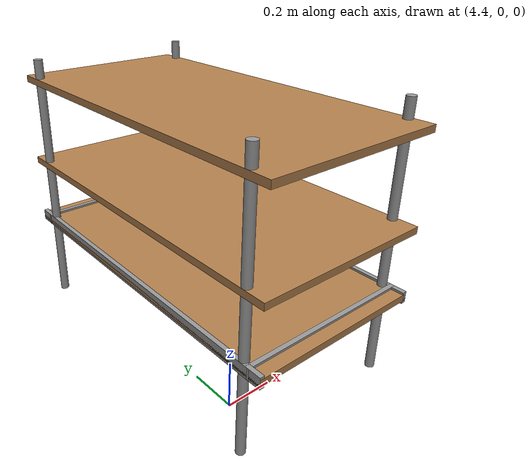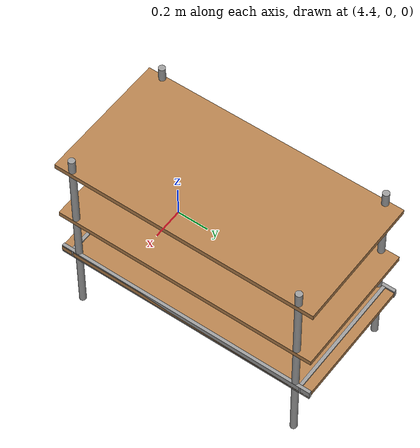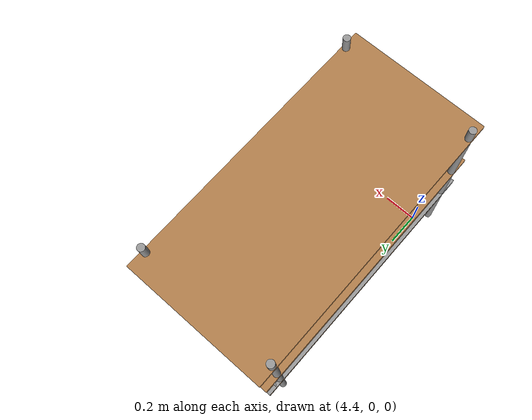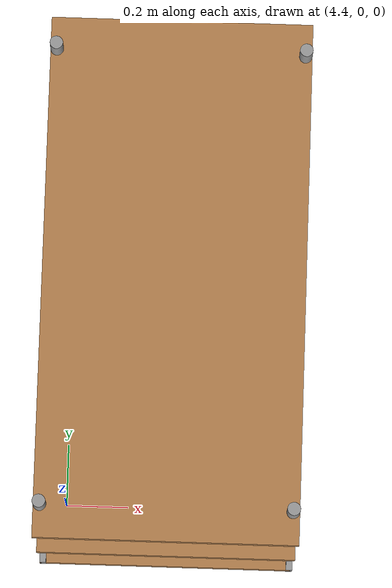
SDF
<sdf version="1.6">
 <world name="default">
  <gravity>0 0 -9.8</gravity>
  <physics default="0" name="default_physics" type="ode">
   <max_step_size>0.001</max_step_size>
   <real_time_factor>1</real_time_factor>
   <real_time_update_rate>1000</real_time_update_rate>
  </physics>
  <model name="pallet_0">
   <include><uri>model://warehouse_pallet</uri></include>
   <pose>4.73156 0.57943 0 0 0 0</pose>
  </model>
  <light name="Warehouse_CeilingLight_003" type="point">
   <pose>0 0 9 0 0 0</pose>
   <diffuse>0.5 0.5 0.5 1</diffuse>
   <specular>0.2 0.2 0.2 1</specular>
   <attenuation>
    <range>80</range>
    <constant>0.01</constant>
    <linear>0.01</linear>
    <quadratic>0.001</quadratic>
   </attenuation>
   <direction>0.1 0.1 -1</direction>
  </light>
 </world>
</sdf>

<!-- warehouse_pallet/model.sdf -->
<sdf version='1.7'>
  <model name='warehouse_pallet'>
    <link name='warehouse_pallet::link'>
      <pose>0 0 -0 0 -0 1.57</pose>
      <self_collide>0</self_collide>
      <inertial>
        <pose>0 0 0 0 -0 0</pose>
        <inertia>
          <ixx>0.267042</ixx>
          <ixy>0</ixy>
          <ixz>0</ixz>
          <iyy>0.937875</iyy>
          <iyz>0</iyz>
          <izz>1.20417</izz>
        </inertia>
        <mass>1</mass>
      </inertial>
      <enable_wind>0</enable_wind>
      <kinematic>0</kinematic>
      <gravity>1</gravity>
      <visual name='holding1_visual'>
        <pose>0 0.39 0.3 0 -0 0</pose>
        <geometry>
          <box>
            <size>1.6 0.02 0.05</size>
          </box>
        </geometry>
        <material>
          <script>
            <uri>file://media/materials/scripts/gazebo.material</uri>
            <name>Gazebo/Grey</name>
          </script>
          <shader type='pixel'>
            <normal_map>__default__</normal_map>
          </shader>
          <ambient>0.3 0.3 0.3 1</ambient>
          <diffuse>0.7 0.7 0.7 1</diffuse>
          <specular>0.01 0.01 0.01 1</specular>
          <emissive>0 0 0 1</emissive>
        </material>
        <transparency>0</transparency>
        <cast_shadows>1</cast_shadows>
      </visual>
      <visual name='front_left_leg'>
        <pose>0.70 0.38 0.5 0 -0 0</pose>
        <geometry>
          <cylinder>
            <radius>0.02</radius>
            <length>1.2</length>
          </cylinder>
        </geometry>
        <material>
          <script>
            <uri>file://media/materials/scripts/gazebo.material</uri>
            <name>Gazebo/Grey</name>
          </script>
          <shader type='pixel'>
            <normal_map>__default__</normal_map>
          </shader>
          <ambient>0.3 0.3 0.3 1</ambient>
          <diffuse>0.7 0.7 0.7 1</diffuse>
          <specular>0.01 0.01 0.01 1</specular>
          <emissive>0 0 0 1</emissive>
        </material>
        <transparency>0</transparency>
        <cast_shadows>1</cast_shadows>
      </visual>
      <visual name='front_right_leg'>
        <pose>0.70 -0.38 0.5 0 -0 0</pose>
        <geometry>
          <cylinder>
            <radius>0.02</radius>
            <length>1.2</length>
          </cylinder>
        </geometry>
        <material>
          <script>
            <uri>file://media/materials/scripts/gazebo.material</uri>
            <name>Gazebo/Grey</name>
          </script>
          <shader type='pixel'>
            <normal_map>__default__</normal_map>
          </shader>
          <ambient>0.3 0.3 0.3 1</ambient>
          <diffuse>0.7 0.7 0.7 1</diffuse>
          <specular>0.01 0.01 0.01 1</specular>
          <emissive>0 0 0 1</emissive>
        </material>
        <transparency>0</transparency>
        <cast_shadows>1</cast_shadows>
      </visual>
      <visual name='back_right_leg'>
        <pose>-0.70 -0.38 0.5 0 -0 0</pose>
        <geometry>
          <cylinder>
            <radius>0.02</radius>
            <length>1.2</length>
          </cylinder>
        </geometry>
        <material>
          <script>
            <uri>file://media/materials/scripts/gazebo.material</uri>
            <name>Gazebo/Grey</name>
          </script>
          <shader type='pixel'>
            <normal_map>__default__</normal_map>
          </shader>
          <ambient>0.3 0.3 0.3 1</ambient>
          <diffuse>0.7 0.7 0.7 1</diffuse>
          <specular>0.01 0.01 0.01 1</specular>
          <emissive>0 0 0 1</emissive>
        </material>
        <transparency>0</transparency>
        <cast_shadows>1</cast_shadows>
      </visual>
      <visual name='back_left_leg'>
        <pose>-0.70 0.38 0.5 0 -0 0</pose>
        <geometry>
          <cylinder>
            <radius>0.02</radius>
            <length>1.2</length>
          </cylinder>
        </geometry>
        <material>
          <script>
            <uri>file://media/materials/scripts/gazebo.material</uri>
            <name>Gazebo/Grey</name>
          </script>
          <shader type='pixel'>
            <normal_map>__default__</normal_map>
          </shader>
          <ambient>0.3 0.3 0.3 1</ambient>
          <diffuse>0.7 0.7 0.7 1</diffuse>
          <specular>0.01 0.01 0.01 1</specular>
          <emissive>0 0 0 1</emissive>
        </material>
        <transparency>0</transparency>
        <cast_shadows>1</cast_shadows>
      </visual>
      <visual name='visual1'>
        <pose>0 0 0.3 0 -0 0</pose>
        <geometry>
          <box>
            <size>1.6 0.8 0.03</size>
          </box>
        </geometry>
        <material>
          <script>
            <uri>file://media/materials/scripts/gazebo.material</uri>
            <name>Gazebo/Wood</name>
          </script>
          <shader type='pixel'>
            <normal_map>__default__</normal_map>
          </shader>
          <ambient>1 1 1 1</ambient>
          <diffuse>1 1 1 1</diffuse>
          <specular>0.2 0.2 0.2 1</specular>
          <emissive>0 0 0 1</emissive>
        </material>
        <transparency>0</transparency>
        <cast_shadows>1</cast_shadows>
      </visual>
      <visual name='holding2_visual'>
        <pose>0 -0.39 0.3 0 -0 0</pose>
        <geometry>
          <box>
            <size>1.6 0.02 0.05</size>
          </box>
        </geometry>
        <material>
          <script>
            <uri>file://media/materials/scripts/gazebo.material</uri>
            <name>Gazebo/Grey</name>
          </script>
          <shader type='pixel'>
            <normal_map>__default__</normal_map>
          </shader>
          <ambient>0.3 0.3 0.3 1</ambient>
          <diffuse>0.7 0.7 0.7 1</diffuse>
          <specular>0.01 0.01 0.01 1</specular>
          <emissive>0 0 0 1</emissive>
        </material>
        <transparency>0</transparency>
        <cast_shadows>1</cast_shadows>
      </visual>
      <visual name='holding3_visual'>
        <pose>0.735 0 0.3 0 -0 1.57</pose>
        <geometry>
          <box>
            <size>0.8 0.02 0.05</size>
          </box>
        </geometry>
        <material>
          <script>
            <uri>file://media/materials/scripts/gazebo.material</uri>
            <name>Gazebo/Grey</name>
          </script>
          <shader type='pixel'>
            <normal_map>__default__</normal_map>
          </shader>
          <ambient>0.3 0.3 0.3 1</ambient>
          <diffuse>0.7 0.7 0.7 1</diffuse>
          <specular>0.01 0.01 0.01 1</specular>
          <emissive>0 0 0 1</emissive>
        </material>
        <transparency>0</transparency>
        <cast_shadows>1</cast_shadows>
      </visual>
      <visual name='holding4_visual'>
        <pose>-0.735 0 0.3 0 -0 1.57</pose>
        <geometry>
          <box>
            <size>0.8 0.02 0.05</size>
          </box>
        </geometry>
        <material>
          <script>
            <uri>file://media/materials/scripts/gazebo.material</uri>
            <name>Gazebo/Grey</name>
          </script>
          <shader type='pixel'>
            <normal_map>__default__</normal_map>
          </shader>
          <ambient>0.3 0.3 0.3 1</ambient>
          <diffuse>0.7 0.7 0.7 1</diffuse>
          <specular>0.01 0.01 0.01 1</specular>
          <emissive>0 0 0 1</emissive>
        </material>
        <transparency>0</transparency>
        <cast_shadows>1</cast_shadows>
      </visual>
      <visual name='visual2'>
        <pose>0 0 0.6 0 -0 0</pose>
        <geometry>
          <box>
            <size>1.6 0.8 0.03</size>
          </box>
        </geometry>
        <material>
          <script>
            <uri>file://media/materials/scripts/gazebo.material</uri>
            <name>Gazebo/Wood</name>
          </script>
          <shader type='pixel'>
            <normal_map>__default__</normal_map>
          </shader>
          <ambient>1 1 1 1</ambient>
          <diffuse>1 1 1 1</diffuse>
          <specular>0.2 0.2 0.2 1</specular>
          <emissive>0 0 0 1</emissive>
        </material>
        <transparency>0</transparency>
        <cast_shadows>1</cast_shadows>
      </visual>
      <visual name='visual3'>
        <pose>0 0 1 0 -0 0</pose>
        <geometry>
          <box>
            <size>1.6 0.8 0.03</size>
          </box>
        </geometry>
        <material>
          <script>
            <uri>file://media/materials/scripts/gazebo.material</uri>
            <name>Gazebo/Wood</name>
          </script>
          <shader type='pixel'>
            <normal_map>__default__</normal_map>
          </shader>
          <ambient>1 1 1 1</ambient>
          <diffuse>1 1 1 1</diffuse>
          <specular>0.2 0.2 0.2 1</specular>
          <emissive>0 0 0 1</emissive>
        </material>
        <transparency>0</transparency>
        <cast_shadows>1</cast_shadows>
      </visual>
      <collision name='surface1'>
        <laser_retro>0</laser_retro>
        <max_contacts>10</max_contacts>
        <pose>0 0 0.3 0 -0 0</pose>
        <geometry>
          <box>
            <size>1.6 0.8 0.03</size>
          </box>
        </geometry>
        <surface>
          <friction>
            <ode>
              <mu>inf</mu>
              <mu2>inf</mu2>
              <fdir1>0 0 0</fdir1>
              <slip1>0</slip1>
              <slip2>0</slip2>
            </ode>
            <torsional>
              <coefficient>1</coefficient>
              <patch_radius>0</patch_radius>
              <surface_radius>0</surface_radius>
              <use_patch_radius>1</use_patch_radius>
              <ode>
                <slip>0</slip>
              </ode>
            </torsional>
          </friction>
          <bounce>
            <restitution_coefficient>0</restitution_coefficient>
            <threshold>1e+06</threshold>
          </bounce>
          <contact>
            <collide_without_contact>0</collide_without_contact>
            <collide_without_contact_bitmask>1</collide_without_contact_bitmask>
            <collide_bitmask>1</collide_bitmask>
            <ode>
              <soft_cfm>0</soft_cfm>
              <soft_erp>0.2</soft_erp>
              <kp>1e+13</kp>
              <kd>1</kd>
              <max_vel>0.01</max_vel>
              <min_depth>0</min_depth>
            </ode>
            <bullet>
              <split_impulse>1</split_impulse>
              <split_impulse_penetration_threshold>-0.01</split_impulse_penetration_threshold>
              <soft_cfm>0</soft_cfm>
              <soft_erp>0.2</soft_erp>
              <kp>1e+13</kp>
              <kd>1</kd>
            </bullet>
          </contact>
        </surface>
      </collision>
      <collision name='holding1_collision'>
        <laser_retro>0</laser_retro>
        <max_contacts>10</max_contacts>
        <pose>0 0.39 0.3 0 -0 0</pose>
        <geometry>
          <box>
            <size>1.6 0.02 0.05</size>
          </box>
        </geometry>
        <surface>
          <friction>
            <ode>
              <mu>1e+09</mu>
              <mu2>1e+09</mu2>
              <fdir1>0 0 0</fdir1>
              <slip1>0</slip1>
              <slip2>0</slip2>
            </ode>
            <torsional>
              <coefficient>1</coefficient>
              <patch_radius>0</patch_radius>
              <surface_radius>0</surface_radius>
              <use_patch_radius>1</use_patch_radius>
              <ode>
                <slip>0</slip>
              </ode>
            </torsional>
          </friction>
          <bounce>
            <restitution_coefficient>0</restitution_coefficient>
            <threshold>1e+06</threshold>
          </bounce>
          <contact>
            <collide_without_contact>0</collide_without_contact>
            <collide_without_contact_bitmask>1</collide_without_contact_bitmask>
            <collide_bitmask>1</collide_bitmask>
            <ode>
              <soft_cfm>0</soft_cfm>
              <soft_erp>0.2</soft_erp>
              <kp>1e+13</kp>
              <kd>1</kd>
              <max_vel>0.01</max_vel>
              <min_depth>0</min_depth>
            </ode>
            <bullet>
              <split_impulse>1</split_impulse>
              <split_impulse_penetration_threshold>-0.01</split_impulse_penetration_threshold>
              <soft_cfm>0</soft_cfm>
              <soft_erp>0.2</soft_erp>
              <kp>1e+13</kp>
              <kd>1</kd>
            </bullet>
          </contact>
        </surface>
      </collision>
      <collision name='holding2_collision'>
        <laser_retro>0</laser_retro>
        <max_contacts>10</max_contacts>
        <pose>0 -0.39 0.3 0 -0 0</pose>
        <geometry>
          <box>
            <size>1.6 0.02 0.05</size>
          </box>
        </geometry>
        <surface>
          <friction>
            <ode>
              <mu>1e+09</mu>
              <mu2>1e+09</mu2>
              <fdir1>0 0 0</fdir1>
              <slip1>0</slip1>
              <slip2>0</slip2>
            </ode>
            <torsional>
              <coefficient>1</coefficient>
              <patch_radius>0</patch_radius>
              <surface_radius>0</surface_radius>
              <use_patch_radius>1</use_patch_radius>
              <ode>
                <slip>0</slip>
              </ode>
            </torsional>
          </friction>
          <bounce>
            <restitution_coefficient>0</restitution_coefficient>
            <threshold>1e+06</threshold>
          </bounce>
          <contact>
            <collide_without_contact>0</collide_without_contact>
            <collide_without_contact_bitmask>1</collide_without_contact_bitmask>
            <collide_bitmask>1</collide_bitmask>
            <ode>
              <soft_cfm>0</soft_cfm>
              <soft_erp>0.2</soft_erp>
              <kp>1e+13</kp>
              <kd>1</kd>
              <max_vel>0.01</max_vel>
              <min_depth>0</min_depth>
            </ode>
            <bullet>
              <split_impulse>1</split_impulse>
              <split_impulse_penetration_threshold>-0.01</split_impulse_penetration_threshold>
              <soft_cfm>0</soft_cfm>
              <soft_erp>0.2</soft_erp>
              <kp>1e+13</kp>
              <kd>1</kd>
            </bullet>
          </contact>
        </surface>
      </collision>
      <collision name='holding3_collision'>
        <laser_retro>0</laser_retro>
        <max_contacts>10</max_contacts>
        <pose>0.735 0 0.3 0 -0 1.57</pose>
        <geometry>
          <box>
            <size>0.8 0.02 0.05</size>
          </box>
        </geometry>
        <surface>
          <friction>
            <ode>
              <mu>1e+09</mu>
              <mu2>1e+09</mu2>
              <fdir1>0 0 0</fdir1>
              <slip1>0</slip1>
              <slip2>0</slip2>
            </ode>
            <torsional>
              <coefficient>1</coefficient>
              <patch_radius>0</patch_radius>
              <surface_radius>0</surface_radius>
              <use_patch_radius>1</use_patch_radius>
              <ode>
                <slip>0</slip>
              </ode>
            </torsional>
          </friction>
          <bounce>
            <restitution_coefficient>0</restitution_coefficient>
            <threshold>1e+06</threshold>
          </bounce>
          <contact>
            <collide_without_contact>0</collide_without_contact>
            <collide_without_contact_bitmask>1</collide_without_contact_bitmask>
            <collide_bitmask>1</collide_bitmask>
            <ode>
              <soft_cfm>0</soft_cfm>
              <soft_erp>0.2</soft_erp>
              <kp>1e+13</kp>
              <kd>1</kd>
              <max_vel>0.01</max_vel>
              <min_depth>0</min_depth>
            </ode>
            <bullet>
              <split_impulse>1</split_impulse>
              <split_impulse_penetration_threshold>-0.01</split_impulse_penetration_threshold>
              <soft_cfm>0</soft_cfm>
              <soft_erp>0.2</soft_erp>
              <kp>1e+13</kp>
              <kd>1</kd>
            </bullet>
          </contact>
        </surface>
      </collision>
      <collision name='holding4_collision'>
        <laser_retro>0</laser_retro>
        <max_contacts>10</max_contacts>
        <pose>-0.735 0 0.3 0 -0 1.57</pose>
        <geometry>
          <box>
            <size>0.8 0.02 0.05</size>
          </box>
        </geometry>
        <surface>
          <friction>
            <ode>
              <mu>1e+09</mu>
              <mu2>1e+09</mu2>
              <fdir1>0 0 0</fdir1>
              <slip1>0</slip1>
              <slip2>0</slip2>
            </ode>
            <torsional>
              <coefficient>1</coefficient>
              <patch_radius>0</patch_radius>
              <surface_radius>0</surface_radius>
              <use_patch_radius>1</use_patch_radius>
              <ode>
                <slip>0</slip>
              </ode>
            </torsional>
          </friction>
          <bounce>
            <restitution_coefficient>0</restitution_coefficient>
            <threshold>1e+06</threshold>
          </bounce>
          <contact>
            <collide_without_contact>0</collide_without_contact>
            <collide_without_contact_bitmask>1</collide_without_contact_bitmask>
            <collide_bitmask>1</collide_bitmask>
            <ode>
              <soft_cfm>0</soft_cfm>
              <soft_erp>0.2</soft_erp>
              <kp>1e+13</kp>
              <kd>1</kd>
              <max_vel>0.01</max_vel>
              <min_depth>0</min_depth>
            </ode>
            <bullet>
              <split_impulse>1</split_impulse>
              <split_impulse_penetration_threshold>-0.01</split_impulse_penetration_threshold>
              <soft_cfm>0</soft_cfm>
              <soft_erp>0.2</soft_erp>
              <kp>1e+13</kp>
              <kd>1</kd>
            </bullet>
          </contact>
        </surface>
      </collision>
      <collision name='surface3'>
        <laser_retro>0</laser_retro>
        <max_contacts>10</max_contacts>
        <pose>0 0 1 0 -0 0</pose>
        <geometry>
          <box>
            <size>1.6 0.8 0.03</size>
          </box>
        </geometry>
        <surface>
          <friction>
            <ode>
              <mu>2.5</mu>
              <mu2>2.5</mu2>
              <fdir1>0 0 0</fdir1>
              <slip1>0</slip1>
              <slip2>0</slip2>
            </ode>
            <torsional>
              <coefficient>1</coefficient>
              <patch_radius>0</patch_radius>
              <surface_radius>0</surface_radius>
              <use_patch_radius>1</use_patch_radius>
              <ode>
                <slip>0</slip>
              </ode>
            </torsional>
          </friction>
          <bounce>
            <restitution_coefficient>0</restitution_coefficient>
            <threshold>1e+06</threshold>
          </bounce>
          <contact>
            <collide_without_contact>0</collide_without_contact>
            <collide_without_contact_bitmask>1</collide_without_contact_bitmask>
            <collide_bitmask>1</collide_bitmask>
            <ode>
              <soft_cfm>0</soft_cfm>
              <soft_erp>0.2</soft_erp>
              <kp>1e+13</kp>
              <kd>1</kd>
              <max_vel>0.01</max_vel>
              <min_depth>0</min_depth>
            </ode>
            <bullet>
              <split_impulse>1</split_impulse>
              <split_impulse_penetration_threshold>-0.01</split_impulse_penetration_threshold>
              <soft_cfm>0</soft_cfm>
              <soft_erp>0.2</soft_erp>
              <kp>1e+13</kp>
              <kd>1</kd>
            </bullet>
          </contact>
        </surface>
      </collision>
      <collision name='surface2'>
        <laser_retro>0</laser_retro>
        <max_contacts>10</max_contacts>
        <pose>0 0 0.6 0 -0 0</pose>
        <geometry>
          <box>
            <size>1.6 0.8 0.03</size>
          </box>
        </geometry>
        <surface>
          <friction>
            <ode>
              <mu>2.5</mu>
              <mu2>2.5</mu2>
              <fdir1>0 0 0</fdir1>
              <slip1>0</slip1>
              <slip2>0</slip2>
            </ode>
            <torsional>
              <coefficient>1</coefficient>
              <patch_radius>0</patch_radius>
              <surface_radius>0</surface_radius>
              <use_patch_radius>1</use_patch_radius>
              <ode>
                <slip>0</slip>
              </ode>
            </torsional>
          </friction>
          <bounce>
            <restitution_coefficient>0</restitution_coefficient>
            <threshold>1e+06</threshold>
          </bounce>
          <contact>
            <collide_without_contact>0</collide_without_contact>
            <collide_without_contact_bitmask>1</collide_without_contact_bitmask>
            <collide_bitmask>1</collide_bitmask>
            <ode>
              <soft_cfm>0</soft_cfm>
              <soft_erp>0.2</soft_erp>
              <kp>1e+13</kp>
              <kd>1</kd>
              <max_vel>0.01</max_vel>
              <min_depth>0</min_depth>
            </ode>
            <bullet>
              <split_impulse>1</split_impulse>
              <split_impulse_penetration_threshold>-0.01</split_impulse_penetration_threshold>
              <soft_cfm>0</soft_cfm>
              <soft_erp>0.2</soft_erp>
              <kp>1e+13</kp>
              <kd>1</kd>
            </bullet>
          </contact>
        </surface>
      </collision>
      <collision name='front_right_leg'>
        <laser_retro>0</laser_retro>
        <max_contacts>10</max_contacts>
        <pose>0.70 -0.38 0.5 0 -0 0</pose>
        <geometry>
          <cylinder>
            <radius>0.02</radius>
            <length>1</length>
          </cylinder>
        </geometry>
        <surface>
          <friction>
            <ode>
              <mu>0.1</mu>
              <mu2>0.1</mu2>
              <fdir1>0 0 0</fdir1>
              <slip1>0</slip1>
              <slip2>0</slip2>
            </ode>
            <torsional>
              <coefficient>1</coefficient>
              <patch_radius>0</patch_radius>
              <surface_radius>0</surface_radius>
              <use_patch_radius>1</use_patch_radius>
              <ode>
                <slip>0</slip>
              </ode>
            </torsional>
          </friction>
          <bounce>
            <restitution_coefficient>0</restitution_coefficient>
            <threshold>1e+06</threshold>
          </bounce>
          <contact>
            <collide_without_contact>0</collide_without_contact>
            <collide_without_contact_bitmask>1</collide_without_contact_bitmask>
            <collide_bitmask>1</collide_bitmask>
            <ode>
              <soft_cfm>0</soft_cfm>
              <soft_erp>0.2</soft_erp>
              <kp>1e+13</kp>
              <kd>1</kd>
              <max_vel>0.01</max_vel>
              <min_depth>0</min_depth>
            </ode>
            <bullet>
              <split_impulse>1</split_impulse>
              <split_impulse_penetration_threshold>-0.01</split_impulse_penetration_threshold>
              <soft_cfm>0</soft_cfm>
              <soft_erp>0.2</soft_erp>
              <kp>1e+13</kp>
              <kd>1</kd>
            </bullet>
          </contact>
        </surface>
      </collision>
      <collision name='back_right_leg'>
        <laser_retro>0</laser_retro>
        <max_contacts>10</max_contacts>
        <pose>-0.70 -0.38 0.5 0 -0 0</pose>
        <geometry>
          <cylinder>
            <radius>0.02</radius>
            <length>1.2</length>
          </cylinder>
        </geometry>
        <surface>
          <friction>
            <ode>
              <mu>0.1</mu>
              <mu2>0.1</mu2>
              <fdir1>0 0 0</fdir1>
              <slip1>0</slip1>
              <slip2>0</slip2>
            </ode>
            <torsional>
              <coefficient>1</coefficient>
              <patch_radius>0</patch_radius>
              <surface_radius>0</surface_radius>
              <use_patch_radius>1</use_patch_radius>
              <ode>
                <slip>0</slip>
              </ode>
            </torsional>
          </friction>
          <bounce>
            <restitution_coefficient>0</restitution_coefficient>
            <threshold>1e+06</threshold>
          </bounce>
          <contact>
            <collide_without_contact>0</collide_without_contact>
            <collide_without_contact_bitmask>1</collide_without_contact_bitmask>
            <collide_bitmask>1</collide_bitmask>
            <ode>
              <soft_cfm>0</soft_cfm>
              <soft_erp>0.2</soft_erp>
              <kp>1e+13</kp>
              <kd>1</kd>
              <max_vel>0.01</max_vel>
              <min_depth>0</min_depth>
            </ode>
            <bullet>
              <split_impulse>1</split_impulse>
              <split_impulse_penetration_threshold>-0.01</split_impulse_penetration_threshold>
              <soft_cfm>0</soft_cfm>
              <soft_erp>0.2</soft_erp>
              <kp>1e+13</kp>
              <kd>1</kd>
            </bullet>
          </contact>
        </surface>
      </collision>
      <collision name='front_left_leg'>
        <laser_retro>0</laser_retro>
        <max_contacts>10</max_contacts>
        <pose>0.70 0.38 0.5 0 -0 0</pose>
        <geometry>
          <cylinder>
            <radius>0.02</radius>
            <length>1.2</length>
          </cylinder>
        </geometry>
        <surface>
          <friction>
            <ode>
              <mu>0.1</mu>
              <mu2>0.1</mu2>
              <fdir1>0 0 0</fdir1>
              <slip1>0</slip1>
              <slip2>0</slip2>
            </ode>
            <torsional>
              <coefficient>1</coefficient>
              <patch_radius>0</patch_radius>
              <surface_radius>0</surface_radius>
              <use_patch_radius>1</use_patch_radius>
              <ode>
                <slip>0</slip>
              </ode>
            </torsional>
          </friction>
          <bounce>
            <restitution_coefficient>0</restitution_coefficient>
            <threshold>1e+06</threshold>
          </bounce>
          <contact>
            <collide_without_contact>0</collide_without_contact>
            <collide_without_contact_bitmask>1</collide_without_contact_bitmask>
            <collide_bitmask>1</collide_bitmask>
            <ode>
              <soft_cfm>0</soft_cfm>
              <soft_erp>0.2</soft_erp>
              <kp>1e+13</kp>
              <kd>1</kd>
              <max_vel>0.01</max_vel>
              <min_depth>0</min_depth>
            </ode>
            <bullet>
              <split_impulse>1</split_impulse>
              <split_impulse_penetration_threshold>-0.01</split_impulse_penetration_threshold>
              <soft_cfm>0</soft_cfm>
              <soft_erp>0.2</soft_erp>
              <kp>1e+13</kp>
              <kd>1</kd>
            </bullet>
          </contact>
        </surface>
      </collision>
      <collision name='back_left_leg'>
        <laser_retro>0</laser_retro>
        <max_contacts>10</max_contacts>
        <pose>-0.70 0.38 0.5 0 -0 0</pose>
        <geometry>
          <cylinder>
            <radius>0.02</radius>
            <length>1.2</length>
          </cylinder>
        </geometry>
        <surface>
          <friction>
            <ode>
              <mu>0.1</mu>
              <mu2>0.1</mu2>
              <fdir1>0 0 0</fdir1>
              <slip1>0</slip1>
              <slip2>0</slip2>
            </ode>
            <torsional>
              <coefficient>1</coefficient>
              <patch_radius>0</patch_radius>
              <surface_radius>0</surface_radius>
              <use_patch_radius>1</use_patch_radius>
              <ode>
                <slip>0</slip>
              </ode>
            </torsional>
          </friction>
          <bounce>
            <restitution_coefficient>0</restitution_coefficient>
            <threshold>1e+06</threshold>
          </bounce>
          <contact>
            <collide_without_contact>0</collide_without_contact>
            <collide_without_contact_bitmask>1</collide_without_contact_bitmask>
            <collide_bitmask>1</collide_bitmask>
            <ode>
              <soft_cfm>0</soft_cfm>
              <soft_erp>0.2</soft_erp>
              <kp>1e+13</kp>
              <kd>1</kd>
              <max_vel>0.01</max_vel>
              <min_depth>0</min_depth>
            </ode>
            <bullet>
              <split_impulse>1</split_impulse>
              <split_impulse_penetration_threshold>-0.01</split_impulse_penetration_threshold>
              <soft_cfm>0</soft_cfm>
              <soft_erp>0.2</soft_erp>
              <kp>1e+13</kp>
              <kd>1</kd>
            </bullet>
          </contact>
        </surface>
      </collision>
    </link>
    <static>0</static>
    <allow_auto_disable>1</allow_auto_disable>
  </model>
</sdf>
